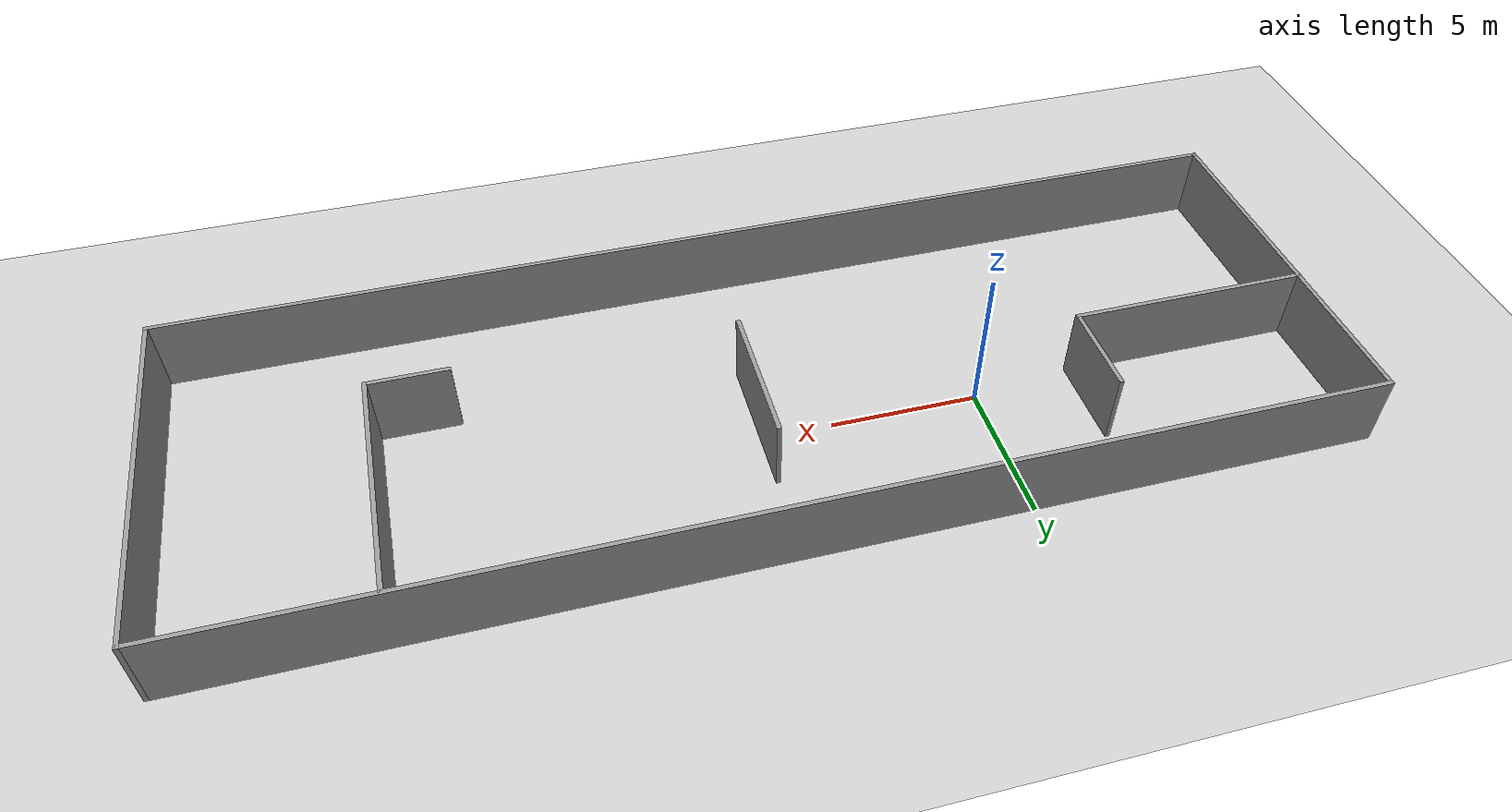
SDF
<sdf version="1.6">
 <world name="default">
  <light name="sun" type="directional">
   <pose>0 0 10 0 -0 0</pose>
   <diffuse>0.8 0.8 0.8 1</diffuse>
   <specular>0.2 0.2 0.2 1</specular>
   <attenuation>
    <range>1000</range>
    <constant>0.9</constant>
    <linear>0.01</linear>
    <quadratic>0.001</quadratic>
   </attenuation>
   <direction>-0.5 0.1 -0.9</direction>
  </light>
  <model name="ground_plane">
   <static>1</static>
   <link name="link">
    <collision name="collision">
     <geometry><plane><normal>0 0 1</normal><size>100 100</size></plane></geometry>
     <surface>
      <contact><collide_bitmask>65535</collide_bitmask></contact>
      <friction><ode><mu>100</mu><mu2>50</mu2></ode></friction>
     </surface>
    </collision>
    <visual name="visual">
     <cast_shadows>0</cast_shadows>
     <geometry><plane><normal>0 0 1</normal><size>100 100</size></plane></geometry>
     <material>
      <script><uri>file://media/materials/scripts/gazebo.material</uri><name>Gazebo/Grey</name></script>
     </material>
    </visual>
   </link>
  </model>
  <gravity>0 0 -9.8</gravity>
  <magnetic_field>6e-06 2.3e-05 -4.2e-05</magnetic_field>
  <atmosphere type="adiabatic"/>
  <physics name="default_physics" default="0" type="ode">
   <max_step_size>0.001</max_step_size>
   <real_time_factor>1</real_time_factor>
   <real_time_update_rate>1000</real_time_update_rate>
  </physics>
  <scene><ambient>0.4 0.4 0.4 1</ambient><background>0.7 0.7 0.7 1</background><shadows>1</shadows></scene>
  <audio><device>default</device></audio>
  <spherical_coordinates>
   <surface_model>EARTH_WGS84</surface_model>
   <latitude_deg>0</latitude_deg>
   <longitude_deg>0</longitude_deg>
   <elevation>0</elevation>
   <heading_deg>0</heading_deg>
  </spherical_coordinates>
  <model name="room.world">
   <pose>7.21741 -1.36729 0 0 -0 0</pose>
   <link name="Wall_10">
    <collision name="Wall_10_Collision">
     <geometry><box><size>12.75 0.15 2.5</size></box></geometry>
     <pose>0 0 1.25 0 -0 0</pose>
    </collision>
    <visual name="Wall_10_Visual">
     <pose>0 0 1.25 0 -0 0</pose>
     <geometry><box><size>12.75 0.15 2.5</size></box></geometry>
     <material>
      <script><uri>file://media/materials/scripts/gazebo.material</uri><name>Gazebo/Grey</name></script>
      <ambient>1 1 1 1</ambient>
     </material>
     <meta><layer>0</layer></meta>
    </visual>
    <pose>-18.7903 0 0 0 -0 -1.5708</pose>
   </link>
   <link name="Wall_11">
    <collision name="Wall_11_Collision">
     <geometry><box><size>37.75 0.15 2.5</size></box></geometry>
     <pose>0 0 1.25 0 -0 0</pose>
    </collision>
    <visual name="Wall_11_Visual">
     <pose>0 0 1.25 0 -0 0</pose>
     <geometry><box><size>37.75 0.15 2.5</size></box></geometry>
     <material>
      <script><uri>file://media/materials/scripts/gazebo.material</uri><name>Gazebo/Grey</name></script>
      <ambient>1 1 1 1</ambient>
     </material>
     <meta><layer>0</layer></meta>
    </visual>
    <pose>0.009697 -6.3 0 0 -0 0</pose>
   </link>
   <link name="Wall_12">
    <collision name="Wall_12_Collision">
     <geometry><box><size>12.75 0.15 2.5</size></box></geometry>
     <pose>0 0 1.25 0 -0 0</pose>
    </collision>
    <visual name="Wall_12_Visual">
     <pose>0 0 1.25 0 -0 0</pose>
     <geometry><box><size>12.75 0.15 2.5</size></box></geometry>
     <material>
      <script><uri>file://media/materials/scripts/gazebo.material</uri><name>Gazebo/Grey</name></script>
      <ambient>1 1 1 1</ambient>
     </material>
     <meta><layer>0</layer></meta>
    </visual>
    <pose>18.8097 0 0 0 -0 1.5708</pose>
   </link>
   <link name="Wall_13">
    <collision name="Wall_13_Collision">
     <geometry><box><size>37.75 0.15 2.5</size></box></geometry>
     <pose>0 0 1.25 0 -0 0</pose>
    </collision>
    <visual name="Wall_13_Visual">
     <pose>0 0 1.25 0 -0 0</pose>
     <geometry><box><size>37.75 0.15 2.5</size></box></geometry>
     <material>
      <script><uri>file://media/materials/scripts/gazebo.material</uri><name>Gazebo/Grey</name></script>
      <ambient>1 1 1 1</ambient>
     </material>
     <meta><layer>0</layer></meta>
    </visual>
    <pose>0.009697 6.3 0 0 -0 3.14159</pose>
   </link>
   <link name="Wall_15">
    <collision name="Wall_15_Collision">
     <geometry><box><size>8.25 0.15 2.5</size></box></geometry>
     <pose>0 0 1.25 0 -0 0</pose>
    </collision>
    <visual name="Wall_15_Visual">
     <pose>0 0 1.25 0 -0 0</pose>
     <geometry><box><size>8.25 0.15 2.5</size></box></geometry>
     <material>
      <script><uri>file://media/materials/scripts/gazebo.material</uri><name>Gazebo/Grey</name></script>
      <ambient>1 1 1 1</ambient>
     </material>
     <meta><layer>0</layer></meta>
    </visual>
    <pose>-14.7597 0.950067 0 0 -0 0</pose>
   </link>
   <link name="Wall_16">
    <collision name="Wall_16_Collision">
     <geometry><box><size>3.25 0.15 2.5</size></box></geometry>
     <pose>0 0 1.25 0 -0 0</pose>
    </collision>
    <visual name="Wall_16_Visual">
     <pose>0 0 1.25 0 -0 0</pose>
     <geometry><box><size>3.25 0.15 2.5</size></box></geometry>
     <material>
      <script><uri>file://media/materials/scripts/gazebo.material</uri><name>Gazebo/Grey</name></script>
      <ambient>1 1 1 1</ambient>
     </material>
     <meta><layer>0</layer></meta>
    </visual>
    <pose>-10.7097 2.50007 0 0 -0 1.5708</pose>
   </link>
   <link name="Wall_19">
    <collision name="Wall_19_Collision">
     <geometry><box><size>8.25 0.15 2.5</size></box></geometry>
     <pose>0 0 1.25 0 -0 0</pose>
    </collision>
    <visual name="Wall_19_Visual">
     <pose>0 0 1.25 0 -0 0</pose>
     <geometry><box><size>8.25 0.15 2.5</size></box></geometry>
     <material>
      <script><uri>file://media/materials/scripts/gazebo.material</uri><name>Gazebo/Grey</name></script>
      <ambient>1 1 1 1</ambient>
     </material>
     <meta><layer>0</layer></meta>
    </visual>
    <pose>12.0905 2.17342 0 0 -0 -1.5708</pose>
   </link>
   <link name="Wall_20">
    <collision name="Wall_20_Collision">
     <geometry><box><size>2.75 0.15 2.5</size></box></geometry>
     <pose>0 0 1.25 0 -0 0</pose>
    </collision>
    <visual name="Wall_20_Visual">
     <pose>0 0 1.25 0 -0 0</pose>
     <geometry><box><size>2.75 0.15 2.5</size></box></geometry>
     <material>
      <script><uri>file://media/materials/scripts/gazebo.material</uri><name>Gazebo/Grey</name></script>
      <ambient>1 1 1 1</ambient>
     </material>
     <meta><layer>0</layer></meta>
    </visual>
    <pose>10.7905 -1.87658 0 0 -0 3.14159</pose>
   </link>
   <link name="Wall_22">
    <collision name="Wall_22_Collision">
     <geometry><box><size>5 0.15 2.5</size></box></geometry>
     <pose>0 0 1.25 0 -0 0</pose>
    </collision>
    <visual name="Wall_22_Visual">
     <pose>0 0 1.25 0 -0 0</pose>
     <geometry><box><size>5 0.15 2.5</size></box></geometry>
     <material>
      <script><uri>file://media/materials/scripts/gazebo.material</uri><name>Gazebo/Grey</name></script>
      <ambient>1 1 1 1</ambient>
     </material>
     <meta><layer>0</layer></meta>
    </visual>
    <pose>0.129029 0.787712 0 0 -0 -1.5708</pose>
   </link>
   <static>1</static>
  </model>
 </world>
</sdf>
